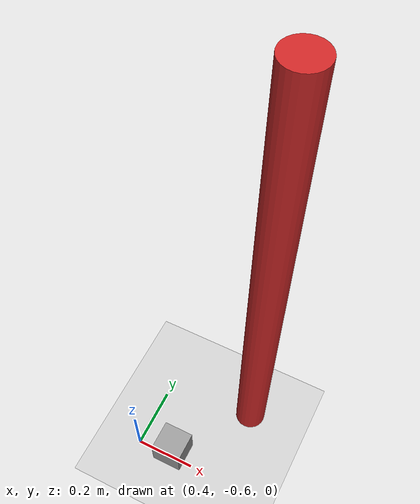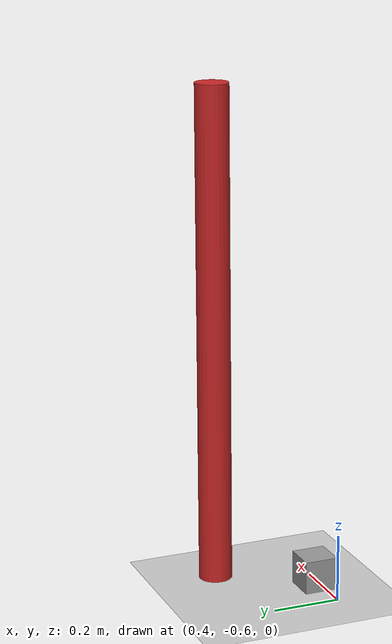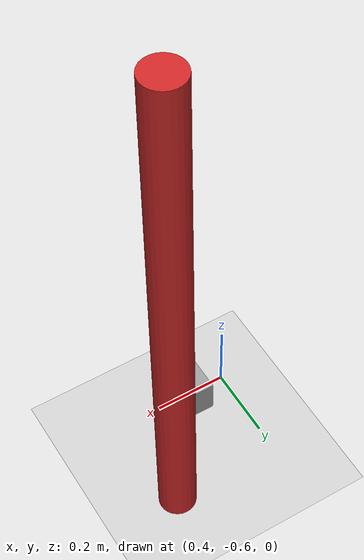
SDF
<?xml version="1.0" ?>
<sdf version="1.4">
  <world name="default">

    <include>
      <uri>model://ground_plane</uri>
    </include>

    <include>
      <uri>model://sun</uri>
    </include>

    <include>
      <uri>model://Cube1</uri>
      <pose>0.52 -0.58 0.05 0 0 0</pose>
    </include>

    <include>
      <uri>model://stick_obstacle</uri>
      <pose>0.7 -0.333 0.75 0 0 0</pose>
    </include>

  </world>
</sdf>

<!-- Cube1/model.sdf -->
<sdf version='1.7'>
  <model name='Cube1'>
    <link name='link_1'>
      <inertial>
        <mass>10</mass>
        <inertia>
          <ixx>1.66667</ixx>
          <ixy>0</ixy>
          <ixz>0</ixz>
          <iyy>1.66667</iyy>
          <iyz>0</iyz>
          <izz>1.66667</izz>
        </inertia>
        <pose>0 0 0 0 -0 0</pose>
      </inertial>
      <pose>0 0 0 0 -0 0</pose>
      <gravity>1</gravity>
      <self_collide>0</self_collide>
      <kinematic>0</kinematic>
      <enable_wind>0</enable_wind>
      <visual name='visual'>
        <pose>0 0 0 0 -0 0</pose>
        <geometry>
          <box>
            <size>0.1 0.1 0.1</size>
          </box>
        </geometry>
        <material>
          <lighting>1</lighting>
          <script>
            <uri>file://media/materials/scripts/gazebo.material</uri>
            <name>Gazebo/Grey</name>
          </script>
          <shader type='pixel'>
            <normal_map>__default__</normal_map>
          </shader>
          <ambient>0.3 0.3 0.3 1</ambient>
          <diffuse>0.7 0.7 0.7 1</diffuse>
          <specular>0.01 0.01 0.01 1</specular>
          <emissive>0 0 0 1</emissive>
        </material>
        <transparency>0</transparency>
        <cast_shadows>1</cast_shadows>
      </visual>
      <collision name='collision'>
        <laser_retro>0</laser_retro>
        <max_contacts>10</max_contacts>
        <pose>0 0 0 0 -0 0</pose>
        <geometry>
          <box>
            <size>0.1 0.1 0.1</size>
          </box>
        </geometry>
        <surface>
          <friction>
            <ode>
              <mu>1</mu>
              <mu2>1</mu2>
              <fdir1>0 0 0</fdir1>
              <slip1>0</slip1>
              <slip2>0</slip2>
            </ode>
            <torsional>
              <coefficient>1</coefficient>
              <patch_radius>0</patch_radius>
              <surface_radius>0</surface_radius>
              <use_patch_radius>1</use_patch_radius>
              <ode>
                <slip>0</slip>
              </ode>
            </torsional>
          </friction>
          <bounce>
            <restitution_coefficient>0</restitution_coefficient>
            <threshold>1e+06</threshold>
          </bounce>
          <contact>
            <collide_without_contact>0</collide_without_contact>
            <collide_without_contact_bitmask>1</collide_without_contact_bitmask>
            <collide_bitmask>1</collide_bitmask>
            <ode>
              <soft_cfm>0</soft_cfm>
              <soft_erp>0.2</soft_erp>
              <kp>1e+13</kp>
              <kd>1</kd>
              <max_vel>0.01</max_vel>
              <min_depth>0</min_depth>
            </ode>
            <bullet>
              <split_impulse>1</split_impulse>
              <split_impulse_penetration_threshold>-0.01</split_impulse_penetration_threshold>
              <soft_cfm>0</soft_cfm>
              <soft_erp>0.2</soft_erp>
              <kp>1e+13</kp>
              <kd>1</kd>
            </bullet>
          </contact>
        </surface>
      </collision>
    </link>
    <static>0</static>
    <allow_auto_disable>1</allow_auto_disable>
  </model>
</sdf>

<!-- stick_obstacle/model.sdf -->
<sdf version='1.7'>
  <model name='stick_obstacle'>
    <link name='link_0'>
      <inertial>
        <mass>10000</mass>
        <inertia>
          <ixx>14.5833</ixx>
          <ixy>0</ixy>
          <ixz>0</ixz>
          <iyy>14.5833</iyy>
          <iyz>0</iyz>
          <izz>12.5</izz>
        </inertia>
        <pose>0 0 0 0 -0 0</pose>
      </inertial>
      <pose>0 0 0 0 -0 0</pose>
      <gravity>1</gravity>
      <self_collide>0</self_collide>
      <kinematic>0</kinematic>
      <enable_wind>0</enable_wind>
      <visual name='visual'>
        <pose>0 0 0 0 -0 0</pose>
        <geometry>
          <cylinder>
            <radius>0.05</radius>
            <length>1.5</length>
          </cylinder>
        </geometry>
        <material>
          <lighting>1</lighting>
          <script>
            <uri>file://media/materials/scripts/gazebo.material</uri>
            <name>Gazebo/Red</name>
          </script>
          <shader type='pixel'>
            <normal_map>__default__</normal_map>
          </shader>
          <ambient>0.3 0.3 0.3 1</ambient>
          <diffuse>0.7 0.7 0.7 1</diffuse>
          <specular>0.01 0.01 0.01 1</specular>
          <emissive>0 0 0 1</emissive>
        </material>
        <transparency>0</transparency>
        <cast_shadows>1</cast_shadows>
      </visual>
      <collision name='collision'>
        <laser_retro>0</laser_retro>
        <max_contacts>10</max_contacts>
        <pose>0 0 0 0 -0 0</pose>
        <geometry>
          <cylinder>
            <radius>0.05</radius>
            <length>1.5</length>
          </cylinder>
        </geometry>
        <surface>
          <friction>
            <ode>
              <mu>1</mu>
              <mu2>1</mu2>
              <fdir1>0 0 0</fdir1>
              <slip1>0</slip1>
              <slip2>0</slip2>
            </ode>
            <torsional>
              <coefficient>1</coefficient>
              <patch_radius>0</patch_radius>
              <surface_radius>0</surface_radius>
              <use_patch_radius>1</use_patch_radius>
              <ode>
                <slip>0</slip>
              </ode>
            </torsional>
          </friction>
          <bounce>
            <restitution_coefficient>0</restitution_coefficient>
            <threshold>1e+06</threshold>
          </bounce>
          <contact>
            <collide_without_contact>0</collide_without_contact>
            <collide_without_contact_bitmask>1</collide_without_contact_bitmask>
            <collide_bitmask>1</collide_bitmask>
            <ode>
              <soft_cfm>0</soft_cfm>
              <soft_erp>0.2</soft_erp>
              <kp>1e+13</kp>
              <kd>1</kd>
              <max_vel>0.01</max_vel>
              <min_depth>0</min_depth>
            </ode>
            <bullet>
              <split_impulse>1</split_impulse>
              <split_impulse_penetration_threshold>-0.01</split_impulse_penetration_threshold>
              <soft_cfm>0</soft_cfm>
              <soft_erp>0.2</soft_erp>
              <kp>1e+13</kp>
              <kd>1</kd>
            </bullet>
          </contact>
        </surface>
      </collision>
    </link>
    <static>0</static>
    <allow_auto_disable>1</allow_auto_disable>
  </model>
</sdf>
